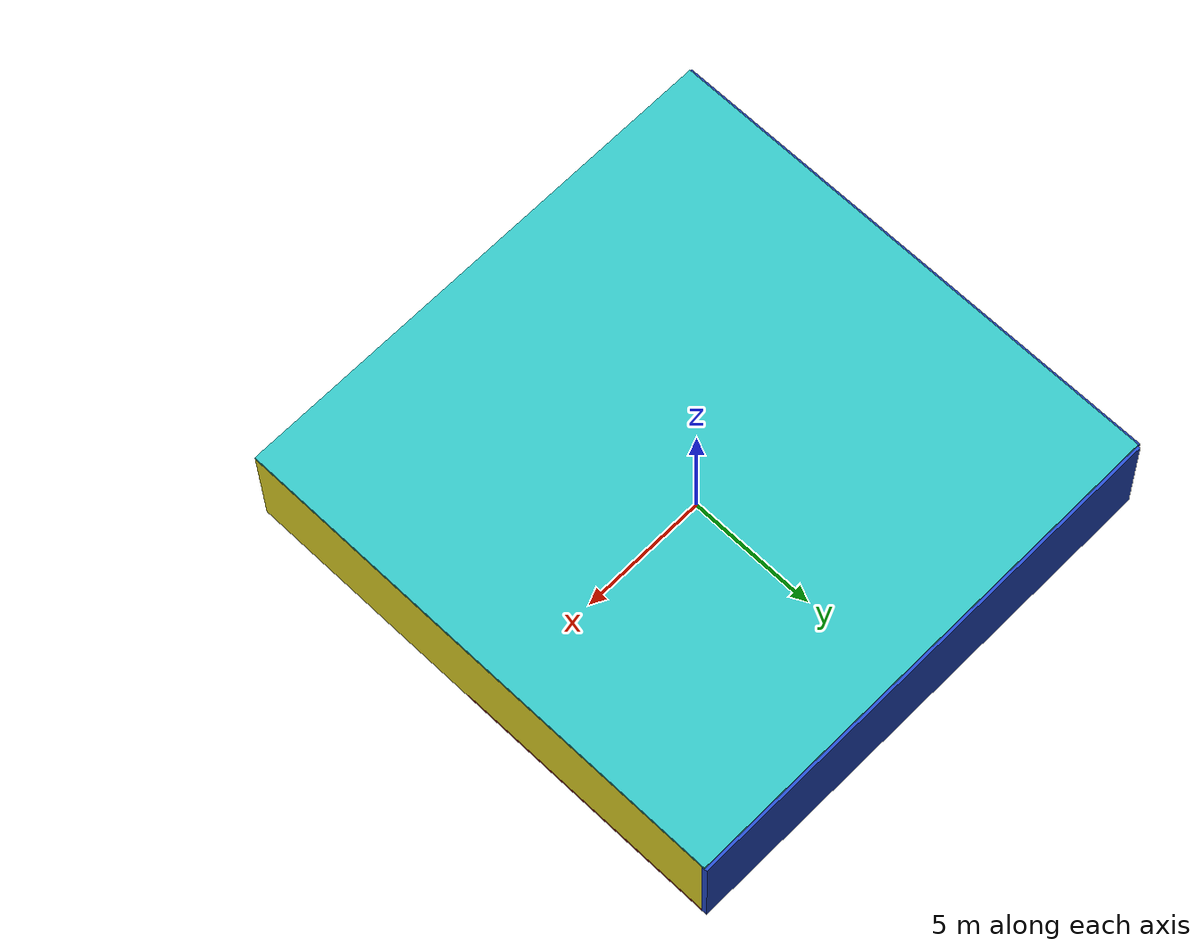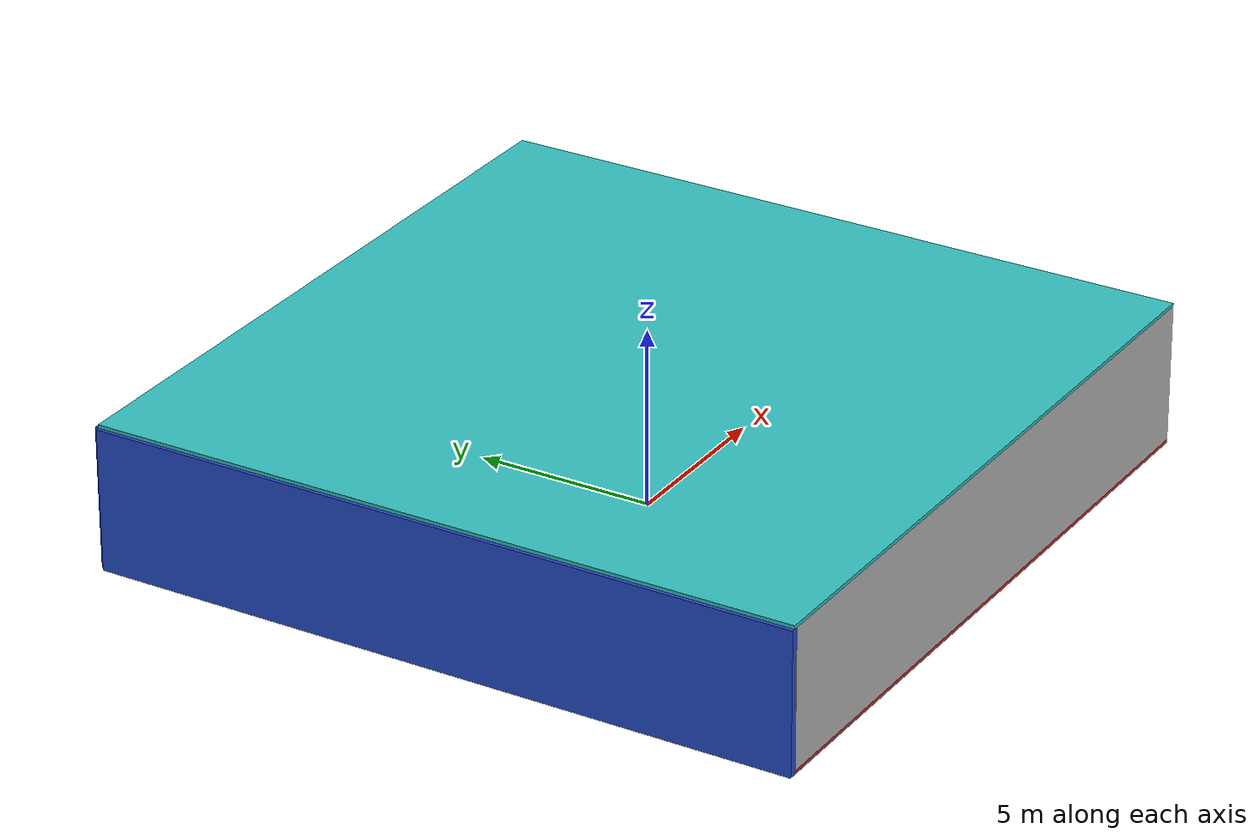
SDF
<sdf version="1.4">
 <world name="default">
  <physics type="ode">
   <max_step_size>0.001</max_step_size>
   <real_time_factor>1</real_time_factor>
   <real_time_update_rate>1000</real_time_update_rate>
   <gravity>0 0 -9.8</gravity>
  </physics>
  <scene><ambient>0.4 0.4 0.4 1</ambient><background>0.7 0.7 0.7 1</background><shadows>1</shadows></scene>
  <model name="Surrounding">
   <static>1</static>
   <link name="Ceiling">
    <collision name="Ceiling_Collision"><geometry><box><size>20 20 0.1</size></box></geometry></collision>
    <visual name="Ceiling_Visual">
     <geometry><box><size>20 20 0.1</size></box></geometry>
     <material>
      <script>
       <uri>file://media/materials/scripts/gazebo.material</uri>
       <name>Gazebo/TurquoiseGlowOutline</name>
      </script>
     </material>
    </visual>
    <pose>0 0 4.05 0 0 0</pose>
   </link>
   <link name="Wall_South">
    <collision name="Wall_South_Collision">
     <geometry><box><size>20 0 4</size></box></geometry>
     <pose>0 0 2 0 -0 0</pose>
    </collision>
    <visual name="Wall_South_Visual">
     <pose>0 0 2 0 -0 0</pose>
     <geometry><box><size>20 0 4</size></box></geometry>
     <material>
      <script><uri>file://media/materials/scripts/gazebo.material</uri><name>Gazebo/PioneerBody</name></script>
     </material>
    </visual>
    <velocity_decay><linear>0</linear><angular>0</angular></velocity_decay>
    <pose>0 -10 0 0 -0 0</pose>
   </link>
   <link name="Wall_East">
    <collision name="Wall_21_Collision">
     <geometry><box><size>20 0 4</size></box></geometry>
     <pose>0 0 2 0 -0 0</pose>
    </collision>
    <visual name="Wall_21_Visual">
     <pose>0 0 2 0 -0 0</pose>
     <geometry><box><size>20 0 4</size></box></geometry>
     <material>
      <script><uri>file://media/materials/scripts/gazebo.material</uri><name>Gazebo/YellowGlow</name></script>
     </material>
    </visual>
    <velocity_decay><linear>0</linear><angular>0</angular></velocity_decay>
    <pose>10 0 0 0 -0 1.5708</pose>
   </link>
   <link name="Wall_North">
    <collision name="Wall_22_Collision">
     <geometry><box><size>20 0.2 4</size></box></geometry>
     <pose>0 0 2 0 -0 0</pose>
    </collision>
    <visual name="Wall_22_Visual">
     <pose>0 0 2 0 -0 0</pose>
     <geometry><box><size>20 0.2 4</size></box></geometry>
     <material>
      <script><uri>file://media/materials/scripts/gazebo.material</uri><name>Gazebo/Blue</name></script>
     </material>
    </visual>
    <velocity_decay><linear>0</linear><angular>0</angular></velocity_decay>
    <pose>0 10 0 0 -0 0</pose>
   </link>
   <link name="Wall_West">
    <collision name="Wall_23_Collision">
     <geometry><box><size>20 0.2 4</size></box></geometry>
     <pose>0 0 2 0 -0 0</pose>
    </collision>
    <visual name="Wall_23_Visual">
     <pose>0 0 2 0 -0 0</pose>
     <geometry><box><size>20 0.2 4</size></box></geometry>
     <material>
      <script><uri>file://media/materials/scripts/gazebo.material</uri><name>Gazebo/BlueLaser</name></script>
     </material>
    </visual>
    <velocity_decay><linear>0</linear><angular>0</angular></velocity_decay>
    <pose>-10 0 0 0 0 -1.5708</pose>
   </link>
   <link name="Ground_link">
    <collision name="collision">
     <pose>0 0 .05 0 -0 0</pose>
     <geometry><box><size>20 20 0.1</size></box></geometry>
    </collision>
    <visual name="visual">
     <pose>0 0 .05 0 -0 0</pose>
     <geometry><box><size>20 20 0.1</size></box></geometry>
     <material>
      <script><uri>file://media/materials/scripts/gazebo.material</uri><name>Gazebo/RedGlow</name></script>
     </material>
    </visual>
   </link>
   <static>1</static>
  </model>
  <spherical_coordinates>
   <surface_model>EARTH_WGS84</surface_model>
   <latitude_deg>0</latitude_deg>
   <longitude_deg>0</longitude_deg>
   <elevation>0</elevation>
   <heading_deg>0</heading_deg>
  </spherical_coordinates>
  <light name="lightball_0" type="diffuse">
   <diffuse>0.8 0.8 0.8 1</diffuse>
   <specular>0.2 0.2 0.2 1</specular>
   <attenuation>
    <range>100</range>
    <constant>0.7</constant>
    <linear>0.01</linear>
    <quadratic>0.001</quadratic>
   </attenuation>
   <direction>-0.5 0.1 -0.9</direction>
   <pose>1.11540405624 -4.78848353625 1.2072616117 0 0 0</pose>
  </light>
  <light name="lightball_1" type="diffuse">
   <diffuse>0.8 0.8 0.8 1</diffuse>
   <specular>0.2 0.2 0.2 1</specular>
   <attenuation>
    <range>100</range>
    <constant>0.7</constant>
    <linear>0.01</linear>
    <quadratic>0.001</quadratic>
   </attenuation>
   <direction>-0.5 0.1 -0.9</direction>
   <pose>-6.09943093627 6.07809699425 2.24385710451 0 0 0</pose>
  </light>
  <light name="lightball_2" type="diffuse">
   <diffuse>0.8 0.8 0.8 1</diffuse>
   <specular>0.2 0.2 0.2 1</specular>
   <attenuation>
    <range>100</range>
    <constant>0.7</constant>
    <linear>0.01</linear>
    <quadratic>0.001</quadratic>
   </attenuation>
   <direction>-0.5 0.1 -0.9</direction>
   <pose>-0.936506696166 -5.9547946869 3.16149018559 0 0 0</pose>
  </light>
  <light name="lightball_3" type="diffuse">
   <diffuse>0.8 0.8 0.8 1</diffuse>
   <specular>0.2 0.2 0.2 1</specular>
   <attenuation>
    <range>100</range>
    <constant>0.7</constant>
    <linear>0.01</linear>
    <quadratic>0.001</quadratic>
   </attenuation>
   <direction>-0.5 0.1 -0.9</direction>
   <pose>9.88901797715 -7.43747962239 0.66652084988 0 0 0</pose>
  </light>
  <light name="lightball_4" type="diffuse">
   <diffuse>0.8 0.8 0.8 1</diffuse>
   <specular>0.2 0.2 0.2 1</specular>
   <attenuation>
    <range>100</range>
    <constant>0.7</constant>
    <linear>0.01</linear>
    <quadratic>0.001</quadratic>
   </attenuation>
   <direction>-0.5 0.1 -0.9</direction>
   <pose>9.39002091102 -9.49393466092 1.9487798271 0 0 0</pose>
  </light>
  <light name="lightball_5" type="diffuse">
   <diffuse>0.8 0.8 0.8 1</diffuse>
   <specular>0.2 0.2 0.2 1</specular>
   <attenuation>
    <range>100</range>
    <constant>0.7</constant>
    <linear>0.01</linear>
    <quadratic>0.001</quadratic>
   </attenuation>
   <direction>-0.5 0.1 -0.9</direction>
   <pose>0.908366845689 -6.27298416334 1.40053292912 0 0 0</pose>
  </light>
  <light name="lightball_6" type="diffuse">
   <diffuse>0.8 0.8 0.8 1</diffuse>
   <specular>0.2 0.2 0.2 1</specular>
   <attenuation>
    <range>100</range>
    <constant>0.7</constant>
    <linear>0.01</linear>
    <quadratic>0.001</quadratic>
   </attenuation>
   <direction>-0.5 0.1 -0.9</direction>
   <pose>-9.06230911543 6.28464937602 3.47305634446 0 0 0</pose>
  </light>
  <light name="lightball_7" type="diffuse">
   <diffuse>0.8 0.8 0.8 1</diffuse>
   <specular>0.2 0.2 0.2 1</specular>
   <attenuation>
    <range>100</range>
    <constant>0.7</constant>
    <linear>0.01</linear>
    <quadratic>0.001</quadratic>
   </attenuation>
   <direction>-0.5 0.1 -0.9</direction>
   <pose>-0.501720826162 -1.68395328192 1.4796447489 0 0 0</pose>
  </light>
  <light name="lightball_8" type="diffuse">
   <diffuse>0.8 0.8 0.8 1</diffuse>
   <specular>0.2 0.2 0.2 1</specular>
   <attenuation>
    <range>100</range>
    <constant>0.7</constant>
    <linear>0.01</linear>
    <quadratic>0.001</quadratic>
   </attenuation>
   <direction>-0.5 0.1 -0.9</direction>
   <pose>-9.47278476678 -6.4866289908 2.37927982406 0 0 0</pose>
  </light>
  <light name="lightball_9" type="diffuse">
   <diffuse>0.8 0.8 0.8 1</diffuse>
   <specular>0.2 0.2 0.2 1</specular>
   <attenuation>
    <range>100</range>
    <constant>0.7</constant>
    <linear>0.01</linear>
    <quadratic>0.001</quadratic>
   </attenuation>
   <direction>-0.5 0.1 -0.9</direction>
   <pose>-8.64595232266 -4.96683591602 0.561934934776 0 0 0</pose>
  </light>
  <include>
   <uri>model://robocup_3Dsim_goal</uri>
   <pose>-7.55004775156 4.18308820819 0 0 0 0.401777042138</pose>
  </include>
  <include>
   <uri>model://robocup_3Dsim_goal</uri>
   <pose>-4.71160939047 1.60909152612 0 0 0 1.65460380683</pose>
  </include>
  <include><uri>model://table</uri><pose>-4.34604333421 5.04289840569 0 0 0 0.760937526285</pose></include>
  <include>
   <uri>model://robocup_3Dsim_goal</uri>
   <pose>-1.50448845821 3.94206659102 0 0 0 2.54370004843</pose>
  </include>
  <include>
   <uri>model://textured_shapes</uri>
   <pose>7.53096966778 7.74914130134 0 0 0 1.02788922499</pose>
  </include>
 </world>
</sdf>

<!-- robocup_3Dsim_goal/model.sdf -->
<sdf version="1.5">
  <model name="robocup_3d_goal">
    <static>true</static>
    <link name="left_post">
      <pose>0 1.05 0.45 0 0 0</pose>
      <collision name="collision">
        <geometry>
          <cylinder>
            <radius>0.05</radius>
            <length>0.9</length>
          </cylinder>
        </geometry>
      </collision>
      <visual name="visual">
        <geometry>
          <cylinder>
            <radius>0.05</radius>
            <length>0.9</length>
          </cylinder>
        </geometry>
        <material>
          <script>
            <uri>file://media/materials/scripts/gazebo.material</uri>
            <name>Gazebo/ZincYellow</name>
          </script>
        </material>
      </visual>
    </link>
    <link name="left_support_horiz_lower">
      <pose>0.30 1.05 0.01 0 0 0</pose>
      <collision name="collision">
        <geometry>
          <box>
            <size>0.50 0.02 0.02</size>
          </box>
        </geometry>
      </collision>
      <visual name="visual">
        <geometry>
          <box>
            <size>0.50 0.02 0.02</size>
          </box>
        </geometry>
        <material>
          <script>
            <uri>file://media/materials/scripts/gazebo.material</uri>
            <name>Gazebo/White</name>
          </script>
        </material>
      </visual>
    </link>
    <link name="left_support_horiz_upper">
      <pose>0.30 1.05 0.79 0 0 0</pose>
      <collision name="collision">
        <geometry>
          <box>
            <size>0.50 0.02 0.02</size>
          </box>
        </geometry>
      </collision>
      <visual name="visual">
        <geometry>
          <box>
            <size>0.50 0.02 0.02</size>
          </box>
        </geometry>
        <material>
          <script>
            <uri>file://media/materials/scripts/gazebo.material</uri>
            <name>Gazebo/White</name>
          </script>
        </material>
      </visual>
    </link>
    <link name="left_support_vertical">
      <pose>0.56 1.05 0.4 0 1.5708 0</pose>
      <collision name="collision">
        <geometry>
          <box>
            <size>0.80 0.02 0.02</size>
          </box>
        </geometry>
      </collision>
      <visual name="visual">
        <geometry>
          <box>
            <size>0.80 0.02 0.02</size>
          </box>
        </geometry>
        <material>
          <script>
            <uri>file://media/materials/scripts/gazebo.material</uri>
            <name>Gazebo/White</name>
          </script>
        </material>
      </visual>
    </link>
    <link name="right_support_horiz_lower">
      <pose>0.30 -1.05 0.01 0 0 0</pose>
      <collision name="collision">
        <geometry>
          <box>
            <size>0.50 0.02 0.02</size>
          </box>
        </geometry>
      </collision>
      <visual name="visual">
        <geometry>
          <box>
            <size>0.50 0.02 0.02</size>
          </box>
        </geometry>
        <material>
          <script>
            <uri>file://media/materials/scripts/gazebo.material</uri>
            <name>Gazebo/White</name>
          </script>
        </material>
      </visual>
    </link>
    <link name="right_support_horiz_upper">
      <pose>0.30 -1.05 0.79 0 0 0</pose>
      <collision name="collision">
        <geometry>
          <box>
            <size>0.50 0.02 0.02</size>
          </box>
        </geometry>
      </collision>
      <visual name="visual">
        <geometry>
          <box>
            <size>0.50 0.02 0.02</size>
          </box>
        </geometry>
        <material>
          <script>
            <uri>file://media/materials/scripts/gazebo.material</uri>
            <name>Gazebo/White</name>
          </script>
        </material>
      </visual>
    </link>
    <link name="right_support_vertical">
      <pose>0.56 -1.05 0.4 0 1.5708 0</pose>
      <collision name="collision">
        <geometry>
          <box>
            <size>0.80 0.02 0.02</size>
          </box>
        </geometry>
      </collision>
      <visual name="visual">
        <geometry>
          <box>
            <size>0.80 0.02 0.02</size>
          </box>
        </geometry>
        <material>
          <script>
            <uri>file://media/materials/scripts/gazebo.material</uri>
            <name>Gazebo/White</name>
          </script>
        </material>
      </visual>
    </link>
    <link name="center_support_horiz_lower">
      <pose>0.56 0 0.01 0 1.5708 0</pose>
      <collision name="collision">
        <geometry>
          <box>
            <size>0.02 2.08 0.02</size>
          </box>
        </geometry>
      </collision>
      <visual name="visual">
        <geometry>
          <box>
            <size>0.02 2.08 0.02</size>
          </box>
        </geometry>
        <material>
          <script>
            <uri>file://media/materials/scripts/gazebo.material</uri>
            <name>Gazebo/White</name>
          </script>
        </material>
      </visual>
    </link>
    <link name="center_support_horiz_upper">
      <pose>0.56 0 0.79 0 1.5708 0</pose>
      <collision name="collision">
        <geometry>
          <box>
            <size>0.02 2.08 0.02</size>
          </box>
        </geometry>
      </collision>
      <visual name="visual">
        <geometry>
          <box>
            <size>0.02 2.08 0.02</size>
          </box>
        </geometry>
        <material>
          <script>
            <uri>file://media/materials/scripts/gazebo.material</uri>
            <name>Gazebo/White</name>
          </script>
        </material>
      </visual>
    </link>
    <link name="right_post">
      <pose>0 -1.05 0.45 0 0 0</pose>
      <collision name="collision">
        <geometry>
          <cylinder>
            <radius>0.05</radius>
            <length>0.9</length>
          </cylinder>
        </geometry>
      </collision>
      <visual name="visual">
        <geometry>
          <cylinder>
            <radius>0.05</radius>
            <length>0.9</length>
          </cylinder>
        </geometry>
        <material>
          <script>
            <uri>file://media/materials/scripts/gazebo.material</uri>
            <name>Gazebo/ZincYellow</name>
          </script>
        </material>
      </visual>
    </link>
    <link name="crossbar">
      <pose>0 0 0.85 1.57 1.57 0</pose>
      <collision name="collision">
        <geometry>
          <cylinder>
            <radius>0.05</radius>
            <length>2.0</length>
          </cylinder>
        </geometry>
      </collision>
      <visual name="visual">
        <geometry>
          <cylinder>
            <radius>0.05</radius>
            <length>2.0</length>
          </cylinder>
        </geometry>
        <material>
          <script>
            <uri>file://media/materials/scripts/gazebo.material</uri>
            <name>Gazebo/ZincYellow</name>
          </script>
        </material>
      </visual>
    </link>
    <link name="center_net">
      <pose>0.56 0 0.40 0 0 0</pose>
      <collision name="collision">
        <geometry>
          <box>
            <size>0.01 2.1 0.80</size>
          </box>
        </geometry>
      </collision>
      <visual name="visual">
        <geometry>
          <box>
            <size>0.01 2.1 0.80</size>
          </box>
        </geometry>
        <material>
          <script>
            <uri>model://../model_source/models/robocup09_spl_field/materials/scripts/</uri>
            <uri>model://../model_source/models/robocup09_spl_field/materials/textures/</uri>
            <name>RoboCup/Net</name>
          </script>
        </material>
      </visual>
    </link>
    <link name="left_net">
      <pose>0.30 1.05 0.40 0 0 0</pose>
      <collision name="collision">
        <geometry>
          <box>
            <size>0.50 0.01 0.76</size>
          </box>
        </geometry>
      </collision>
      <visual name="visual">
        <geometry>
          <box>
            <size>0.50 0.01 0.76</size>
          </box>
        </geometry>
        <material>
          <script>
            <uri>model://../model_source/models/robocup09_spl_field/materials/scripts/</uri>
            <uri>model://../model_source/models/robocup09_spl_field/materials/textures/</uri>
            <name>RoboCup/Net</name>
          </script>
        </material>
      </visual>
    </link>
    <link name="right_net">
      <pose>0.30 -1.05 0.40 0 0 0</pose>
      <collision name="collision">
        <geometry>
          <box>
            <size>0.50 0.01 0.76</size>
          </box>
        </geometry>
      </collision>
      <visual name="visual">
        <geometry>
          <box>
            <size>0.50 0.01 0.76</size>
          </box>
        </geometry>
        <material>
          <script>
            <uri>model://../model_source/models/robocup09_spl_field/materials/scripts/</uri>
            <uri>model://../model_source/models/robocup09_spl_field/materials/textures/</uri>
            <name>RoboCup/Net</name>
          </script>
        </material>
      </visual>
    </link>
  </model>
</sdf>

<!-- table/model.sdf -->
<sdf version="1.5">
  <model name="table">
    <static>true</static>
    <link name="link">
      <collision name="surface">
        <pose>0 0 1.0 0 0 0</pose>
        <geometry>
          <box>
            <size>1.5 0.8 0.03</size>
          </box>
        </geometry>
        <surface>
          <friction>
            <ode>
              <mu>0.6</mu>
              <mu2>0.6</mu2>
            </ode>
          </friction>
        </surface>
      </collision>
      <visual name="visual1">
        <pose>0 0 1.0 0 0 0</pose>
        <geometry>
          <box>
            <size>1.5 0.8 0.03</size>
          </box>
        </geometry>
        <material>
          <script>
            <uri>model://media/materials/scripts/gazebo.material</uri>
            <name>Gazebo/Wood</name>
          </script>
        </material>
      </visual>
      <collision name="front_left_leg">
        <pose>0.68 0.38 0.5 0 0 0</pose>
        <geometry>
          <cylinder>
            <radius>0.02</radius>
            <length>1.0</length>
          </cylinder>
        </geometry>
      </collision>
      <visual name="front_left_leg">
        <pose>0.68 0.38 0.5 0 0 0</pose>
        <geometry>
          <cylinder>
            <radius>0.02</radius>
            <length>1.0</length>
          </cylinder>
        </geometry>
        <material>
          <script>
            <uri>model://media/materials/scripts/gazebo.material</uri>
            <name>Gazebo/Grey</name>
          </script>
        </material>
      </visual>
      <collision name="front_right_leg">
        <pose>0.68 -0.38 0.5 0 0 0</pose>
        <geometry>
          <cylinder>
            <radius>0.02</radius>
            <length>1.0</length>
          </cylinder>
        </geometry>
      </collision>
      <visual name="front_right_leg">
        <pose>0.68 -0.38 0.5 0 0 0</pose>
        <geometry>
          <cylinder>
            <radius>0.02</radius>
            <length>1.0</length>
          </cylinder>
        </geometry>
        <material>
          <script>
            <uri>model://media/materials/scripts/gazebo.material</uri>
            <name>Gazebo/Grey</name>
          </script>
        </material>
      </visual>
      <collision name="back_right_leg">
        <pose>-0.68 -0.38 0.5 0 0 0</pose>
        <geometry>
          <cylinder>
            <radius>0.02</radius>
            <length>1.0</length>
          </cylinder>
        </geometry>
      </collision>
      <visual name="back_right_leg">
        <pose>-0.68 -0.38 0.5 0 0 0</pose>
        <geometry>
          <cylinder>
            <radius>0.02</radius>
            <length>1.0</length>
          </cylinder>
        </geometry>
        <material>
          <script>
            <uri>model://media/materials/scripts/gazebo.material</uri>
            <name>Gazebo/Grey</name>
          </script>
        </material>
      </visual>
      <collision name="back_left_leg">
        <pose>-0.68 0.38 0.5 0 0 0</pose>
        <geometry>
          <cylinder>
            <radius>0.02</radius>
            <length>1.0</length>
          </cylinder>
        </geometry>
      </collision>
      <visual name="back_left_leg">
        <pose>-0.68 0.38 0.5 0 0 0</pose>
        <geometry>
          <cylinder>
            <radius>0.02</radius>
            <length>1.0</length>
          </cylinder>
        </geometry>
        <material>
          <script>
            <uri>model://media/materials/scripts/gazebo.material</uri>
            <name>Gazebo/Grey</name>
          </script>
        </material>
      </visual>
    </link>
  </model>
</sdf>

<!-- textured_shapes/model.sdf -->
<sdf version="1.6">
  <model name="textured_shapes">
    <pose>0 0 0.5 0 0 0</pose>
    <link name="box">
      <pose>0 -1.5 0 0 0 0</pose>
      <collision name="collision">
        <geometry>
          <box>
            <size>1 1 1</size>
          </box>
        </geometry>
      </collision>
      <visual name="visual">
        <geometry>
          <box>
            <size>1 1 1</size>
          </box>
        </geometry>
        <material>
          <script>
            <uri>model://../model_source/models/textured_shapes/materials/scripts</uri>
            <uri>model://../model_source/models/textured_shapes/materials/textures</uri>
            <name>TexturedShape/Squares</name>
          </script>
        </material>
      </visual>
    </link>
    <link name="sphere">
      <collision name="collision">
        <geometry>
          <sphere>
            <radius>0.5</radius>
          </sphere>
        </geometry>
      </collision>
      <visual name="visual">
        <geometry>
          <sphere>
            <radius>0.5</radius>
          </sphere>
        </geometry>
        <material>
          <script>
            <uri>model://../model_source/models/textured_shapes/materials/scripts</uri>
            <uri>model://../model_source/models/textured_shapes/materials/textures</uri>
            <name>TexturedShape/Squares</name>
          </script>
        </material>
      </visual>
    </link>
    <link name="cylinder">
      <pose>0 1.5 0 0 0 0</pose>
      <collision name="collision">
        <geometry>
          <cylinder>
            <radius>0.5</radius>
            <length>1</length>
          </cylinder>
        </geometry>
      </collision>
      <visual name="visual">
        <geometry>
          <cylinder>
            <radius>0.5</radius>
            <length>1</length>
          </cylinder>
        </geometry>
        <material>
          <script>
            <uri>model://../model_source/models/textured_shapes/materials/scripts</uri>
            <uri>model://../model_source/models/textured_shapes/materials/textures</uri>
            <name>TexturedShape/Squares</name>
          </script>
        </material>
      </visual>
    </link>
  </model>
</sdf>
